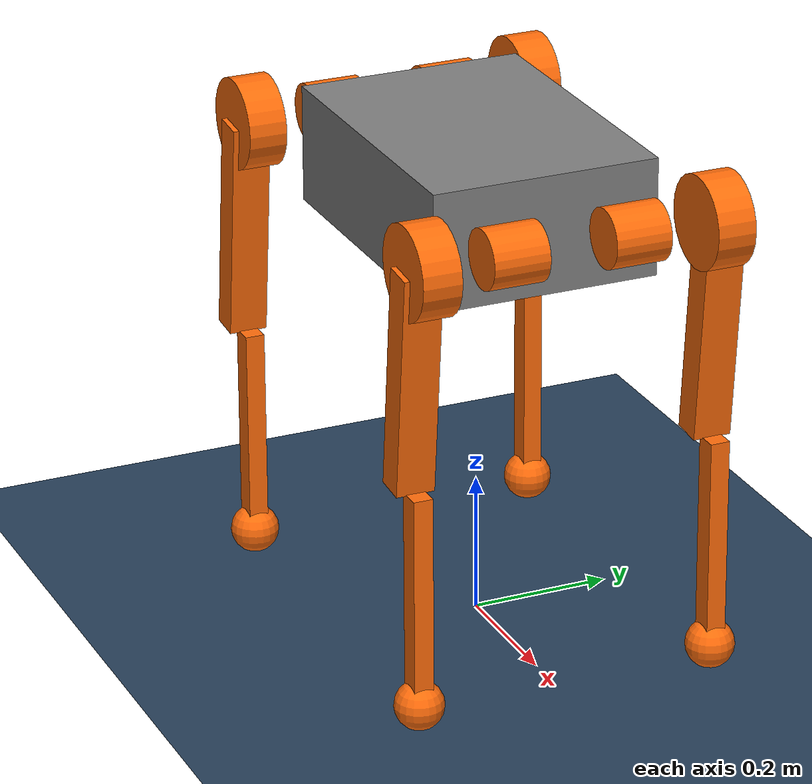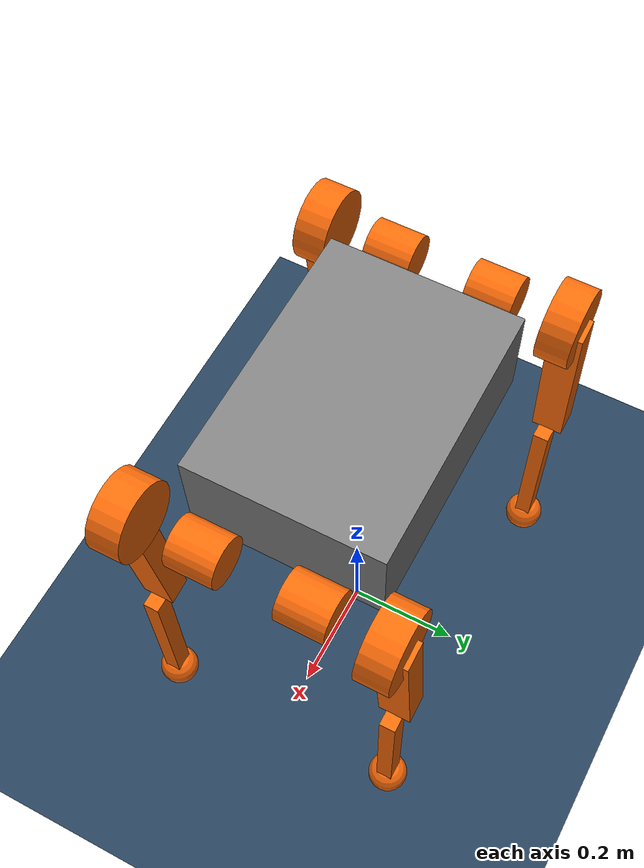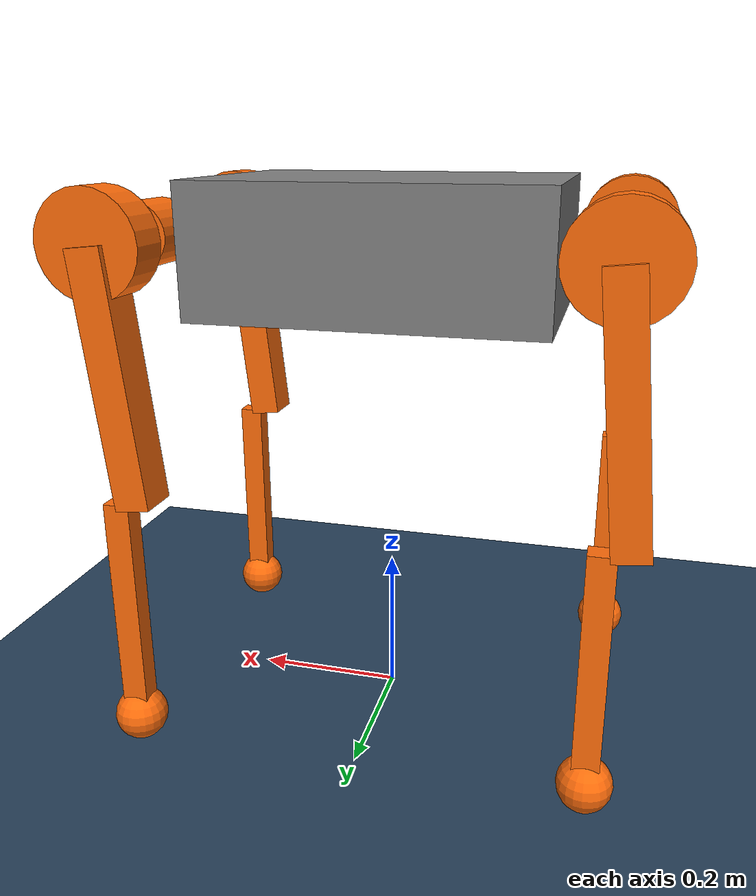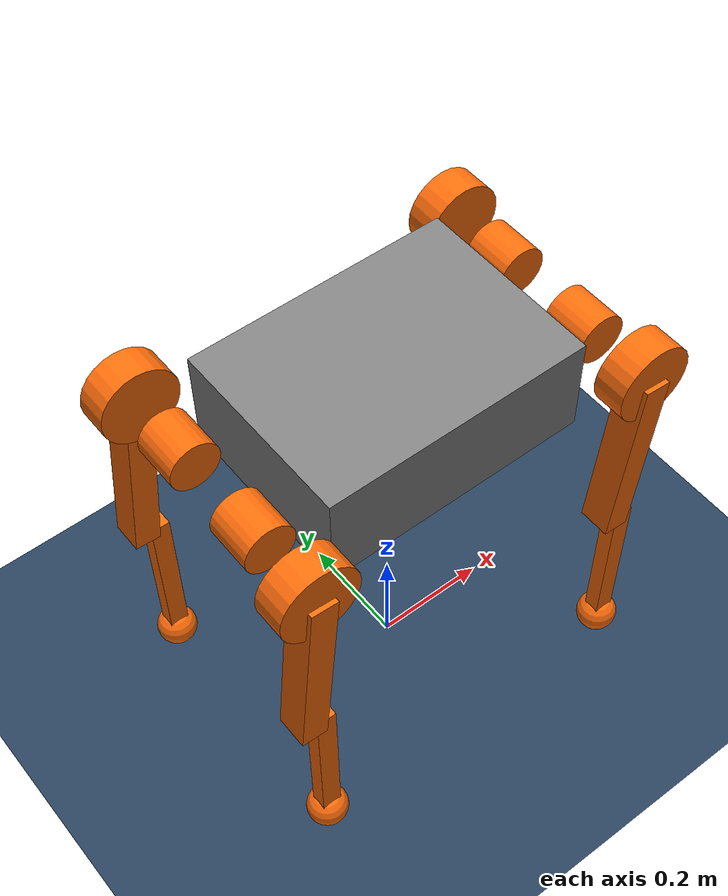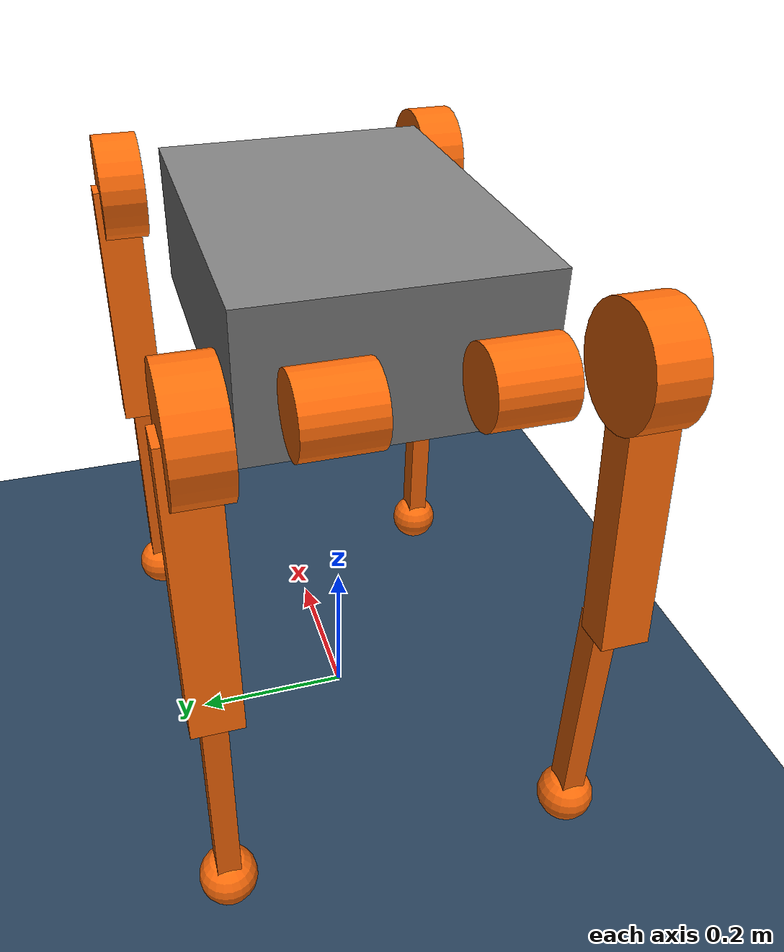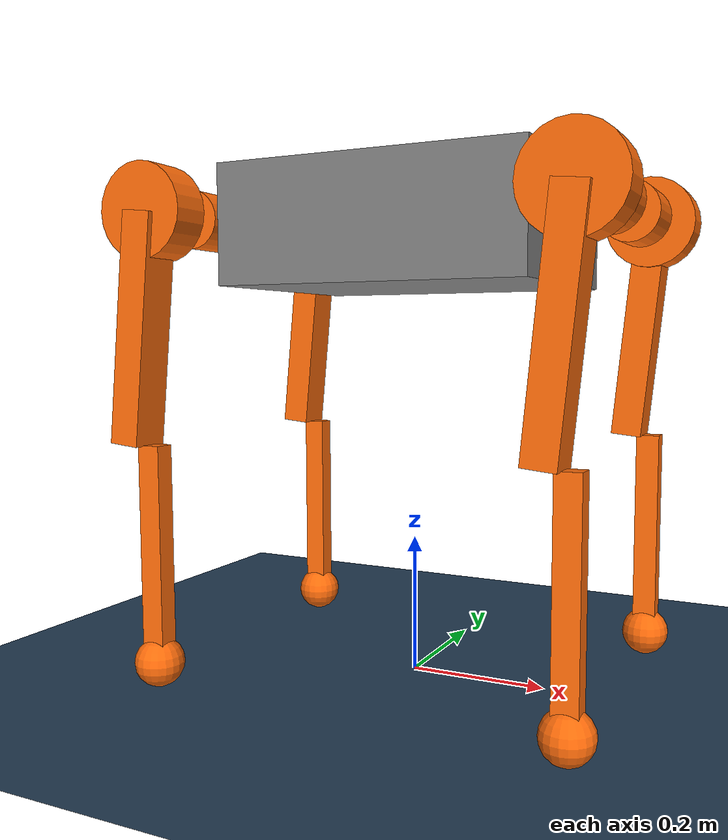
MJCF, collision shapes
<mujoco model="a1 scene">
  <include file="a1.xml"/>

  <statistic center="0 0 0.1" extent="0.8"/>

  <visual>
    <headlight diffuse="0.6 0.6 0.6" ambient="0.3 0.3 0.3" specular="0 0 0"/>
    <rgba haze="0.15 0.25 0.35 1"/>
    <global azimuth="-130" elevation="-20"/>
  </visual>

  <asset>
    <texture type="skybox" builtin="gradient" rgb1="0.3 0.5 0.7" rgb2="0 0 0" width="512" height="3072"/>
    <texture type="2d" name="groundplane" builtin="checker" mark="edge" rgb1="0.2 0.3 0.4" rgb2="0.1 0.2 0.3"
      markrgb="0.8 0.8 0.8" width="300" height="300"/>
    <material name="groundplane" texture="groundplane" texuniform="true" texrepeat="5 5" reflectance="0.2"/>
  </asset>

  <worldbody>
    <light pos="0 0 1.5" dir="0 0 -1" directional="true"/>
    <geom name="floor" size="0 0 0.05" type="plane" material="groundplane"/>

  </worldbody>
</mujoco>

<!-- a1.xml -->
<mujoco model="a1">
  <compiler angle="radian" meshdir="./asset/"/>
  <option cone="elliptic" impratio="100" />

  <default>
    <default class="a1">
      <joint damping="1" armature="0.1" frictionloss="0.1"/>
      <default class="visual">
        <geom type="mesh" contype="0" conaffinity="0" group="2"/>
      </default>
      <default class="collision">
        <geom group="3"/>
        <default class="foot">
          <geom type="sphere" size="0.035" priority="1" condim="6"
            friction="0.8 0.02 0.01"/>
        </default>
      </default>
    </default>
  </default>

  <asset>
    <mesh name="base_link" file="meshes/dolanga1/base_link.STL"/>
    <mesh name="LF_hip_link" file="meshes/dolanga1/LF_hip_link.STL"/>
    <mesh name="LF_thigh_link" file="meshes/dolanga1/LF_thigh_link.STL"/>
    <mesh name="LF_calf_link" file="meshes/dolanga1/LF_calf_link.STL"/>
    <mesh name="RF_thigh_link" file="meshes/dolanga1/RF_thigh_link.STL"/>
  </asset>

  <worldbody>
    <body name="base" pos="0 0 0.665">
      <inertial pos="-0.000229163 0.0118849 -0.0097022" quat="-0.00229784 0.706868 0.000788763 0.707341" mass="16.736" diaginertia="0.643183 0.505987 0.216558"/>
      <freejoint/>
      <geom class="visual" mesh="base_link"/>
      <geom size="0.225 0.163 0.084" pos="0 0 -0.015" type="box" class="collision"/>
      <site name="imu" pos="0 0 0" />
      <body name="LF_hip" pos="0.298 0.0875 0">
        <inertial pos="-0.012381 0.001585 -2e-06" quat="0.500635 0.481419 0.51666 0.500662" mass="1.47437" diaginertia="0.0022883 0.00217687 0.00135283"/>
        <joint name="LF_HAA" pos="0 0 0" axis="1 0 0" range="-0.85 0.85" actuatorfrcrange="-96 96"/>
        <geom class="visual" rgba="1 0.423529 0.0392157 1" mesh="LF_hip_link"/>
        <geom size="0.042 0.04" quat="0.707107 0.707107 0 0" type="cylinder" rgba="1 0.423529 0.0392157 1" class="collision"/>
        <body name="LF_thigh" pos="0 0.1312 0">
          <inertial pos="-0.008151 -0.035895 -0.045087" quat="0.957437 -0.0893436 -0.0688843 -0.265681" mass="2.8226" diaginertia="0.0298033 0.0273677 0.00552899"/>
          <joint name="LF_HFE" pos="0 0 0" axis="0 1 0" range="-2.31 2.22" actuatorfrcrange="-156 156"/>
          <geom class="visual" rgba="1 0.423529 0.0392157 1" mesh="LF_thigh_link"/>
          <geom class="collision" size="0.16 0.0275 0.0225" pos="-0.015 0 -0.16" quat="0.670882 0 0.741564 0" type="box" rgba="1 0.423529 0.0392157 1"/>
          <geom class="collision" size="0.066 0.0275" pos="0 -0.008 0" quat="0.707107 0.707107 0 0" type="cylinder" rgba="1 0.423529 0.0392157 1"/>
          <body name="LF_calf" pos="0 0 -0.32">
            <inertial pos="0.0116784 -9.74223e-05 -0.203355" quat="0.708929 0.00714736 0.0079747 0.705199" mass="0.968798" diaginertia="0.0163331 0.0160438 0.00055638"/>
            <joint name="LF_KFE" pos="0 0 0" axis="0 1 0" range="-2.71 -1.16" actuatorfrcrange="-156 156"/>
            <geom class="visual" rgba="1 0.423529 0.0392157 1" mesh="LF_calf_link"/>
            <geom class="collision" size="0.155 0.014 0.017" pos="0 0 -0.155" quat="0.707107 0 0.707107 0" type="box" rgba="1 0.423529 0.0392157 1"/>
            <body name="LF_FOOT" pos="0 0 -0.31">
              <inertial pos="0 0 0" mass="0.118505" diaginertia="5.806745000000001e-05 5.806745000000001e-05 5.806745000000001e-05"/>
              <geom class="foot" rgba="1 0.423529 0.0392157 1"/>
            </body>
          </body>
        </body>
      </body>

      <body name="LH_hip" pos="-0.298 0.0875 0">
        <inertial pos="0.012381 0.001585 -2e-06" quat="0.51666 0.500662 0.500635 0.481419" mass="1.47437" diaginertia="0.0022883 0.00217687 0.00135283"/>
        <joint name="LH_HAA" pos="0 0 0" axis="1 0 0" range="-0.85 0.85" actuatorfrcrange="-96 96"/>
        <geom class="visual" quat="0 0 1 0" rgba="1 0.423529 0.0392157 1" mesh="LF_hip_link"/>
        <geom class="collision" size="0.042 0.04" quat="0.707107 0.707107 0 0" type="cylinder" rgba="1 0.423529 0.0392157 1"/>
        <body name="LH_thigh" pos="0 0.1312 0">
          <inertial pos="-0.008151 -0.035895 -0.045087" quat="0.957437 -0.0893436 -0.0688843 -0.265681" mass="2.8226" diaginertia="0.0298033 0.0273677 0.00552899"/>
          <joint name="LH_HFE" pos="0 0 0" axis="0 1 0" range="-2.31 2.22" actuatorfrcrange="-156 156"/>
          <geom class="visual" rgba="1 0.423529 0.0392157 1" mesh="LF_thigh_link"/>
          <geom class="collision" size="0.16 0.0275 0.0225" pos="-0.015 0 -0.16" quat="0.670882 0 0.741564 0" type="box" rgba="1 0.423529 0.0392157 1"/>
          <geom class="collision" size="0.066 0.0275" pos="0 -0.008 0" quat="0.707107 0.707107 0 0" type="cylinder" rgba="1 0.423529 0.0392157 1"/>
          <body name="LH_calf" pos="0 0 -0.32">
            <inertial pos="0.0116784 -9.74223e-05 -0.203355" quat="0.708929 0.00714736 0.0079747 0.705199" mass="0.968798" diaginertia="0.0163331 0.0160438 0.00055638"/>
            <joint name="LH_KFE" pos="0 0 0" axis="0 1 0" range="-2.71 -1.16" actuatorfrcrange="-156 156"/>
            <geom class="visual" rgba="1 0.423529 0.0392157 1" mesh="LF_calf_link"/>
            <geom class="collision" size="0.155 0.014 0.017" pos="0 0 -0.155" quat="0.707107 0 0.707107 0" type="box" rgba="1 0.423529 0.0392157 1"/>
            <body name="LH_FOOT" pos="0 0 -0.31">
              <inertial pos="0 0 0" mass="0.118505" diaginertia="5.806745000000001e-05 5.806745000000001e-05 5.806745000000001e-05"/>
              <geom class="foot" rgba="1 0.423529 0.0392157 1"/>
            </body>
          </body>
        </body>
      </body>

      <body name="RF_hip" pos="0.298 -0.0875 0">
        <inertial pos="-0.012381 -0.001585 -2e-06" quat="0.500662 0.51666 0.481419 0.500635" mass="1.47437" diaginertia="0.0022883 0.00217687 0.00135283"/>
        <joint name="RF_HAA" pos="0 0 0" axis="1 0 0" range="-0.85 0.85" actuatorfrcrange="-96 96"/>
        <geom class="visual" quat="0 1 0 0" rgba="1 0.423529 0.0392157 1" mesh="LF_hip_link"/>
        <geom class="collision" size="0.042 0.04" quat="0.707107 0.707107 0 0" type="cylinder" rgba="1 0.423529 0.0392157 1"/>
        <body name="RF_thigh" pos="0 -0.1312 0">
          <inertial pos="-0.008151 0.035895 -0.045087" quat="0.957437 0.0893436 -0.0688843 0.265681" mass="2.8226" diaginertia="0.0298033 0.0273677 0.00552899"/>
          <joint name="RF_HFE" pos="0 0 0" axis="0 1 0" range="-2.31 2.22" actuatorfrcrange="-156 156"/>
          <geom class="visual" rgba="1 0.423529 0.0392157 1" mesh="RF_thigh_link"/>
          <geom class="collision" size="0.16 0.0275 0.0225" pos="-0.015 0 -0.16" quat="0.670882 0 0.741564 0" type="box" rgba="1 0.423529 0.0392157 1"/>
          <geom class="collision" size="0.066 0.0275" pos="0 0.008 0" quat="0.707107 0.707107 0 0" type="cylinder" rgba="1 0.423529 0.0392157 1"/>
          <body name="RF_calf" pos="0 0 -0.32">
            <inertial pos="0.0116784 -9.74223e-05 -0.203355" quat="0.708929 0.00714736 0.0079747 0.705199" mass="0.968798" diaginertia="0.0163331 0.0160438 0.00055638"/>
            <joint name="RF_KFE" pos="0 0 0" axis="0 1 0" range="-2.71 -1.16" actuatorfrcrange="-156 156"/>
            <geom class="visual" rgba="1 0.423529 0.0392157 1" mesh="LF_calf_link"/>
            <geom class="collision" size="0.155 0.014 0.017" pos="0 0 -0.155" quat="0.707107 0 0.707107 0" type="box" rgba="1 0.423529 0.0392157 1"/>
            <body name="RF_FOOT" pos="0 0 -0.31">
              <inertial pos="0 0 0" mass="0.118505" diaginertia="5.806745000000001e-05 5.806745000000001e-05 5.806745000000001e-05"/>
              <geom class="foot" rgba="1 0.423529 0.0392157 1"/>
            </body>
          </body>
        </body>
      </body>

      <body name="RH_hip" pos="-0.298 -0.0875 0">
        <inertial pos="0.012381 -0.001585 -2e-06" quat="0.481419 0.500635 0.500662 0.51666" mass="1.47437" diaginertia="0.0022883 0.00217687 0.00135283"/>
        <joint name="RH_HAA" pos="0 0 0" axis="1 0 0" range="-0.85 0.85" actuatorfrcrange="-96 96"/>
        <geom class="visual" quat="0 0 0 -1" rgba="1 0.423529 0.0392157 1" mesh="LF_hip_link"/>
        <geom class="collision" size="0.042 0.04" quat="0.707107 0.707107 0 0" type="cylinder" rgba="1 0.423529 0.0392157 1"/>
        <body name="RH_thigh" pos="0 -0.1312 0">
          <inertial pos="-0.008151 0.035895 -0.045087" quat="0.957437 0.0893436 -0.0688843 0.265681" mass="2.8226" diaginertia="0.0298033 0.0273677 0.00552899"/>
          <joint name="RH_HFE" pos="0 0 0" axis="0 1 0" range="-2.31 2.22" actuatorfrcrange="-156 156"/>
          <geom class="visual" rgba="1 0.423529 0.0392157 1" mesh="RF_thigh_link"/>
          <geom class="collision" size="0.16 0.0275 0.0225" pos="-0.015 0 -0.16" quat="0.670882 0 0.741564 0" type="box" rgba="1 0.423529 0.0392157 1"/>
          <geom class="collision" size="0.066 0.0275" pos="0 0.008 0" quat="0.707107 0.707107 0 0" type="cylinder" rgba="1 0.423529 0.0392157 1"/>
          <body name="RH_calf" pos="0 0 -0.32">
            <inertial pos="0.0116784 -9.74223e-05 -0.203355" quat="0.708929 0.00714736 0.0079747 0.705199" mass="0.968798" diaginertia="0.0163331 0.0160438 0.00055638"/>
            <joint name="RH_KFE" pos="0 0 0" axis="0 1 0" range="-2.71 -1.16" actuatorfrcrange="-156 156"/>
            <geom class="visual" rgba="1 0.423529 0.0392157 1" mesh="LF_calf_link"/>
            <geom class="collision" size="0.155 0.014 0.017" pos="0 0 -0.155" quat="0.707107 0 0.707107 0" type="box" rgba="1 0.423529 0.0392157 1"/>
            <body name="RH_FOOT" pos="0 0 -0.31">
              <inertial pos="0 0 0" mass="0.118505" diaginertia="5.806745000000001e-05 5.806745000000001e-05 5.806745000000001e-05"/>
              <geom class="foot" rgba="1 0.423529 0.0392157 1"/>
            </body>
          </body>
        </body>
      </body>
    </body>
  </worldbody>

  <actuator>
    <motor ctrlrange="-96 96" name="LF_HAA_motor" joint="LF_HAA"/>
    <motor ctrlrange="-156 156" name="LF_HFE_motor" joint="LF_HFE"/>
    <motor ctrlrange="-156 156" name="LF_KFE_motor" joint="LF_KFE"/>
    <motor ctrlrange="-96 96" name="LH_HAA_motor" joint="LH_HAA"/>
    <motor ctrlrange="-156 156" name="LH_HFE_motor" joint="LH_HFE"/>
    <motor ctrlrange="-156 156" name="LH_KFE_motor" joint="LH_KFE"/>
    <motor ctrlrange="-96 96" name="RF_HAA_motor" joint="RF_HAA"/>
    <motor ctrlrange="-156 156" name="RF_HFE_motor" joint="RF_HFE"/>
    <motor ctrlrange="-156 156" name="RF_KFE_motor" joint="RF_KFE"/>
    <motor ctrlrange="-96 96" name="RH_HAA_motor" joint="RH_HAA"/>
    <motor ctrlrange="-156 156" name="RH_HFE_motor" joint="RH_HFE"/>
    <motor ctrlrange="-156 156" name="RH_KFE_motor" joint="RH_KFE"/>
  </actuator>

  <sensor>
    <jointpos name="LF_HAA_pos" joint="LF_HAA" />
    <jointpos name="LF_HFE_pos" joint="LF_HFE" />
    <jointpos name="LF_KFE_pos" joint="LF_KFE" />
    <jointpos name="LH_HAA_pos" joint="LH_HAA" />
    <jointpos name="LH_HFE_pos" joint="LH_HFE" />
    <jointpos name="LH_KFE_pos" joint="LH_KFE" />
    <jointpos name="RF_HAA_pos" joint="RF_HAA" />
    <jointpos name="RF_HFE_pos" joint="RF_HFE" />
    <jointpos name="RF_KFE_pos" joint="RF_KFE" />
    <jointpos name="RH_HAA_pos" joint="RH_HAA" />
    <jointpos name="RH_HFE_pos" joint="RH_HFE" />
    <jointpos name="RH_KFE_pos" joint="RH_KFE" />

    <jointvel name="LF_HAA_vel" joint="LF_HAA" />
    <jointvel name="LF_HFE_vel" joint="LF_HFE" />
    <jointvel name="LF_KFE_vel" joint="LF_KFE" />
    <jointvel name="LH_HAA_vel" joint="LH_HAA" />
    <jointvel name="LH_HFE_vel" joint="LH_HFE" />
    <jointvel name="LH_KFE_vel" joint="LH_KFE" />
    <jointvel name="RF_HAA_vel" joint="RF_HAA" />
    <jointvel name="RF_HFE_vel" joint="RF_HFE" />
    <jointvel name="RF_KFE_vel" joint="RF_KFE" />
    <jointvel name="RH_HAA_vel" joint="RH_HAA" />
    <jointvel name="RH_HFE_vel" joint="RH_HFE" />
    <jointvel name="RH_KFE_vel" joint="RH_KFE" />

    <jointactuatorfrc name="LF_HAA_torque" joint="LF_HAA" noise="0.01" />
    <jointactuatorfrc name="LF_HFE_torque" joint="LF_HFE" noise="0.01" />
    <jointactuatorfrc name="LF_KFE_torque" joint="LF_KFE" noise="0.01" />
    <jointactuatorfrc name="LH_HAA_torque" joint="LH_HAA" noise="0.01" />
    <jointactuatorfrc name="LH_HFE_torque" joint="LH_HFE" noise="0.01" />
    <jointactuatorfrc name="LH_KFE_torque" joint="LH_KFE" noise="0.01" />
    <jointactuatorfrc name="RF_HAA_torque" joint="RF_HAA" noise="0.01" />
    <jointactuatorfrc name="RF_HFE_torque" joint="RF_HFE" noise="0.01" />
    <jointactuatorfrc name="RF_KFE_torque" joint="RF_KFE" noise="0.01" />
    <jointactuatorfrc name="RH_HAA_torque" joint="RH_HAA" noise="0.01" />
    <jointactuatorfrc name="RH_HFE_torque" joint="RH_HFE" noise="0.01" />
    <jointactuatorfrc name="RH_KFE_torque" joint="RH_KFE" noise="0.01" />

    <framequat name="imu_quat" objtype="site" objname="imu" />
    <gyro name="imu_gyro" site="imu" />
    <accelerometer name="imu_acc" site="imu" />

    <framepos name="frame_pos" objtype="site" objname="imu" />
    <framelinvel name="frame_vel" objtype="site" objname="imu" />
  </sensor>

  <keyframe>
    <key name="STANCE"
     qpos="0 0 0.5 1 0 0 0
            0 0.75 -1.5
            0 0.75 -1.5
            0 0.75 -1.5
            0 0.75 -1.5" />

    <key name="LIEDOWN"
     qpos="0 0 0.13 1 0 0 0
            0.25 1.2 -2.82
            0.25 1.2 -2.82
            -0.25 0.9 -2.82
            -0.25 0.9 -2.82" />
  </keyframe>
</mujoco>
